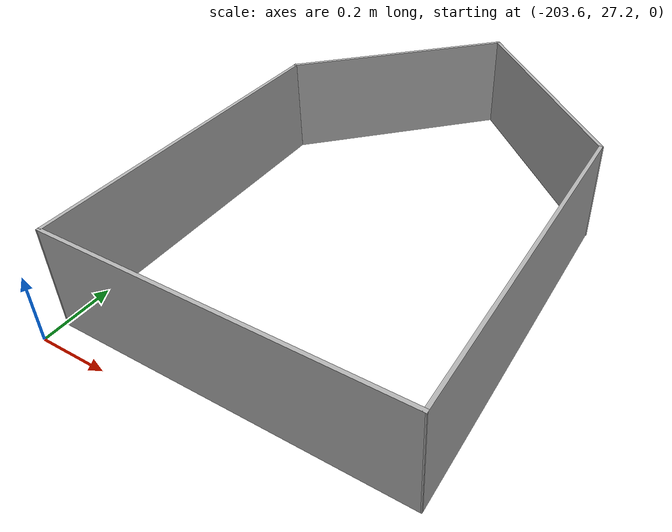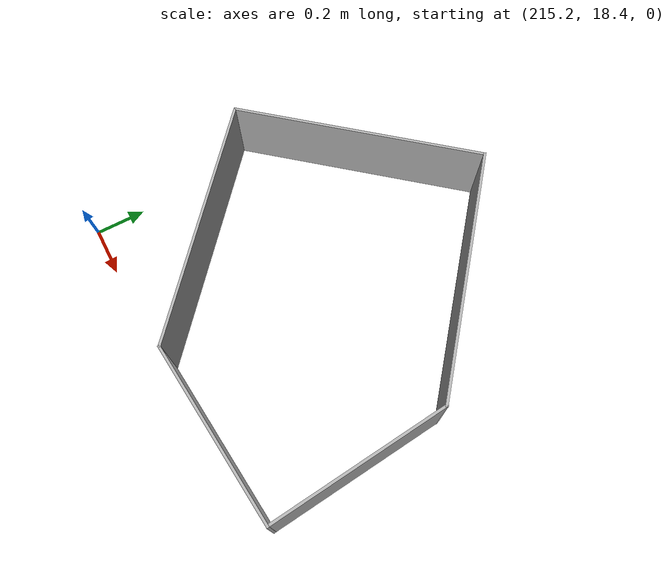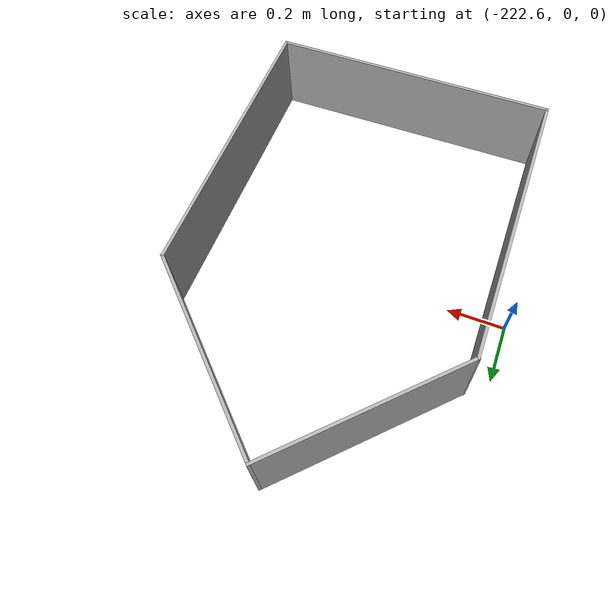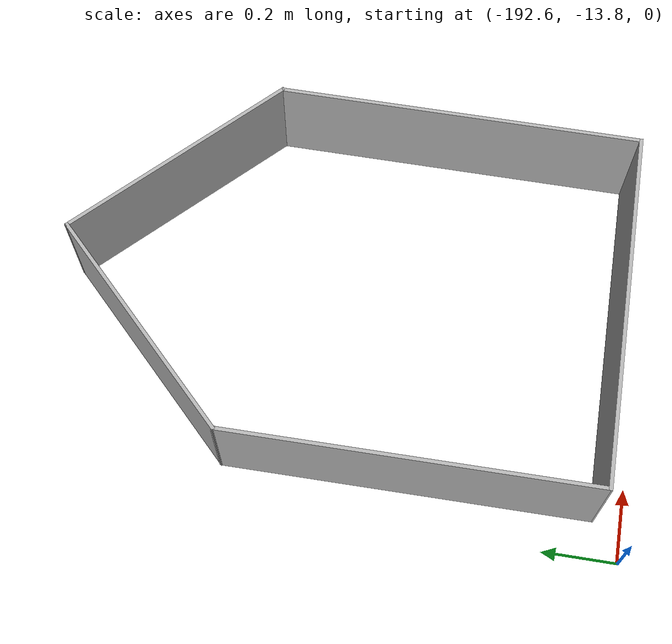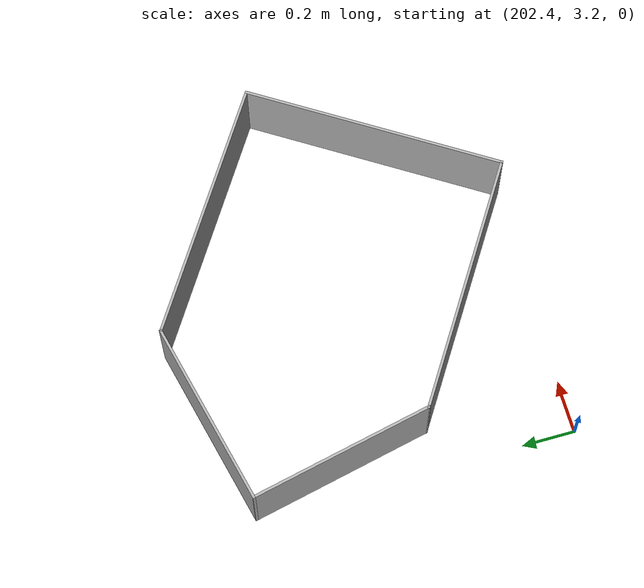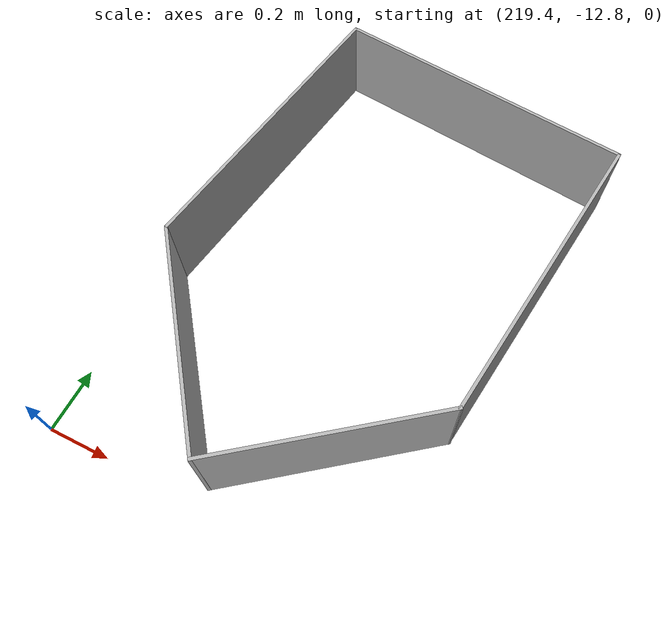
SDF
<sdf version="1.9">
 <world name="cadc_custom">
  <physics type="ode">
   <max_step_size>0.004</max_step_size>
   <real_time_factor>1.0</real_time_factor>
   <real_time_update_rate>250</real_time_update_rate>
  </physics>
  <plugin name="gz::sim::systems::Physics" filename="gz-sim-physics-system"/>
  <plugin name="gz::sim::systems::UserCommands" filename="gz-sim-user-commands-system"/>
  <plugin name="gz::sim::systems::SceneBroadcaster" filename="gz-sim-scene-broadcaster-system"/>
  <plugin name="gz::sim::systems::Contact" filename="gz-sim-contact-system"/>
  <plugin name="gz::sim::systems::Imu" filename="gz-sim-imu-system"/>
  <plugin name="gz::sim::systems::AirPressure" filename="gz-sim-air-pressure-system"/>
  <plugin name="gz::sim::systems::ApplyLinkWrench" filename="gz-sim-apply-link-wrench-system"/>
  <plugin name="gz::sim::systems::NavSat" filename="gz-sim-navsat-system"/>
  <plugin name="gz::sim::systems::Sensors" filename="gz-sim-sensors-system">
   <render_engine>ogre2</render_engine>
  </plugin>
  <gravity>0 0 -9.8</gravity>
  <magnetic_field>6e-06 2.3e-05 -4.2e-05</magnetic_field>
  <atmosphere type="adiabatic"/>
  <scene>
   <grid>false</grid>
   <ambient>0.4 0.4 0.4 1</ambient>
   <background>0.7 0.7 0.7 1</background>
   <shadows>true</shadows>
  </scene>
  <model name="线">
   <pose>-137.655 -22.3114 0 0 -0 0</pose>
   <link name="Wall_0">
    <collision name="Wall_0_Collision">
     <geometry><box><size>20 0.05 0.01</size></box></geometry>
     <pose>0 0 0.005 0 -0 0</pose>
    </collision>
    <visual name="Wall_0_Visual">
     <pose>0 0 0.005 0 -0 0</pose>
     <geometry><box><size>20 0.05 0.01</size></box></geometry>
     <material>
      <ambient>1 1 1 1</ambient>
      <ambient>0.3 0.3 0.3 1</ambient>
      <diffuse>0.7 0.7 0.7 1</diffuse>
      <specular>0.01 0.01 0.01 1</specular>
     </material>
     <meta><layer>0</layer></meta>
    </visual>
    <pose>-1.0275 0 0 0 -0 1.5708</pose>
   </link>
   <static>1</static>
  </model>
  <model name="天井">
   <pose>-220.98 0.74 0 0 -0 0</pose>
   <link name="Wall_0">
    <collision name="Wall_0_Collision">
     <geometry><box><size>1 0.01 0.3</size></box></geometry>
     <pose>0 0 0.15 0 -0 0</pose>
    </collision>
    <visual name="Wall_0_Visual">
     <pose>0 0 0.15 0 -0 0</pose>
     <geometry><box><size>1 0.01 0.3</size></box></geometry>
     <material>
      <ambient>1 1 1 1</ambient>
      <ambient>0.3 0.3 0.3 1</ambient>
      <diffuse>0.7 0.7 0.7 1</diffuse>
      <specular>0.01 0.01 0.01 1</specular>
     </material>
     <meta><layer>0</layer></meta>
    </visual>
    <pose>-1.54465 -0.967489 0 0 -0 -1.56712</pose>
   </link>
   <link name="Wall_11">
    <collision name="Wall_11_Collision">
     <geometry><box><size>1 0.01 0.3</size></box></geometry>
     <pose>0 0 0.15 0 -0 0</pose>
    </collision>
    <visual name="Wall_11_Visual">
     <pose>0 0 0.15 0 -0 0</pose>
     <geometry><box><size>1 0.01 0.3</size></box></geometry>
     <material>
      <ambient>1 1 1 1</ambient>
      <ambient>0.3 0.3 0.3 1</ambient>
      <diffuse>0.7 0.7 0.7 1</diffuse>
      <specular>0.01 0.01 0.01 1</specular>
     </material>
     <meta><layer>0</layer></meta>
    </visual>
    <pose>-1.04783 -1.46249 0 0 -0 -7e-06</pose>
   </link>
   <link name="Wall_2">
    <collision name="Wall_2_Collision">
     <geometry><box><size>1 0.01 0.3</size></box></geometry>
     <pose>0 0 0.15 0 -0 0</pose>
    </collision>
    <visual name="Wall_2_Visual">
     <pose>0 0 0.15 0 -0 0</pose>
     <geometry><box><size>1 0.01 0.3</size></box></geometry>
     <material>
      <ambient>1 1 1 1</ambient>
      <ambient>0.3 0.3 0.3 1</ambient>
      <diffuse>0.7 0.7 0.7 1</diffuse>
      <specular>0.01 0.01 0.01 1</specular>
     </material>
     <meta><layer>0</layer></meta>
    </visual>
    <pose>-0.550887 -0.967492 0 0 -0 1.56687</pose>
   </link>
   <link name="Wall_7">
    <collision name="Wall_7_Collision">
     <geometry><box><size>0.707 0.01 0.3</size></box></geometry>
     <pose>0 0 0.15 0 -0 0</pose>
    </collision>
    <visual name="Wall_7_Visual">
     <pose>0 0 0.15 0 -0 0</pose>
     <geometry><box><size>0.707 0.01 0.3</size></box></geometry>
     <material>
      <ambient>1 1 1 1</ambient>
      <ambient>0.3 0.3 0.3 1</ambient>
      <diffuse>0.7 0.7 0.7 1</diffuse>
      <specular>0.01 0.01 0.01 1</specular>
     </material>
     <meta><layer>0</layer></meta>
    </visual>
    <pose>-1.30004 -0.226065 0 0 -0 0.785398</pose>
   </link>
   <link name="Wall_8">
    <collision name="Wall_8_Collision">
     <geometry><box><size>0.713422 0.01 0.3</size></box></geometry>
     <pose>0 0 0.15 0 -0 0</pose>
    </collision>
    <visual name="Wall_8_Visual">
     <pose>0 0 0.15 0 -0 0</pose>
     <geometry><box><size>0.713422 0.01 0.3</size></box></geometry>
     <material>
      <ambient>1 1 1 1</ambient>
      <ambient>0.3 0.3 0.3 1</ambient>
      <diffuse>0.7 0.7 0.7 1</diffuse>
      <specular>0.01 0.01 0.01 1</specular>
     </material>
     <meta><layer>0</layer></meta>
    </visual>
    <pose>-0.801278 -0.224186 0 0 -0 -0.76973</pose>
   </link>
   <static>1</static>
  </model>
  <model name="天井_0">
   <pose>-202.045 28.73 0 0 -0 0</pose>
   <link name="Wall_0">
    <collision name="Wall_0_Collision">
     <geometry><box><size>1 0.01 0.3</size></box></geometry>
     <pose>0 0 0.15 0 -0 0</pose>
    </collision>
    <visual name="Wall_0_Visual">
     <pose>0 0 0.15 0 -0 0</pose>
     <geometry><box><size>1 0.01 0.3</size></box></geometry>
     <material>
      <ambient>1 1 1 1</ambient>
      <ambient>0.3 0.3 0.3 1</ambient>
      <diffuse>0.7 0.7 0.7 1</diffuse>
      <specular>0.01 0.01 0.01 1</specular>
     </material>
     <meta><layer>0</layer></meta>
    </visual>
    <pose>-1.54465 -0.967489 0 0 -0 -1.56712</pose>
   </link>
   <link name="Wall_11">
    <collision name="Wall_11_Collision">
     <geometry><box><size>1 0.01 0.3</size></box></geometry>
     <pose>0 0 0.15 0 -0 0</pose>
    </collision>
    <visual name="Wall_11_Visual">
     <pose>0 0 0.15 0 -0 0</pose>
     <geometry><box><size>1 0.01 0.3</size></box></geometry>
     <material>
      <ambient>1 1 1 1</ambient>
      <ambient>0.3 0.3 0.3 1</ambient>
      <diffuse>0.7 0.7 0.7 1</diffuse>
      <specular>0.01 0.01 0.01 1</specular>
     </material>
     <meta><layer>0</layer></meta>
    </visual>
    <pose>-1.04783 -1.46249 0 0 -0 -7e-06</pose>
   </link>
   <link name="Wall_2">
    <collision name="Wall_2_Collision">
     <geometry><box><size>1 0.01 0.3</size></box></geometry>
     <pose>0 0 0.15 0 -0 0</pose>
    </collision>
    <visual name="Wall_2_Visual">
     <pose>0 0 0.15 0 -0 0</pose>
     <geometry><box><size>1 0.01 0.3</size></box></geometry>
     <material>
      <ambient>1 1 1 1</ambient>
      <ambient>0.3 0.3 0.3 1</ambient>
      <diffuse>0.7 0.7 0.7 1</diffuse>
      <specular>0.01 0.01 0.01 1</specular>
     </material>
     <meta><layer>0</layer></meta>
    </visual>
    <pose>-0.550887 -0.967492 0 0 -0 1.56687</pose>
   </link>
   <link name="Wall_7">
    <collision name="Wall_7_Collision">
     <geometry><box><size>0.707 0.01 0.3</size></box></geometry>
     <pose>0 0 0.15 0 -0 0</pose>
    </collision>
    <visual name="Wall_7_Visual">
     <pose>0 0 0.15 0 -0 0</pose>
     <geometry><box><size>0.707 0.01 0.3</size></box></geometry>
     <material>
      <ambient>1 1 1 1</ambient>
      <ambient>0.3 0.3 0.3 1</ambient>
      <diffuse>0.7 0.7 0.7 1</diffuse>
      <specular>0.01 0.01 0.01 1</specular>
     </material>
     <meta><layer>0</layer></meta>
    </visual>
    <pose>-1.30004 -0.226065 0 0 -0 0.785398</pose>
   </link>
   <link name="Wall_8">
    <collision name="Wall_8_Collision">
     <geometry><box><size>0.713422 0.01 0.3</size></box></geometry>
     <pose>0 0 0.15 0 -0 0</pose>
    </collision>
    <visual name="Wall_8_Visual">
     <pose>0 0 0.15 0 -0 0</pose>
     <geometry><box><size>0.713422 0.01 0.3</size></box></geometry>
     <material>
      <ambient>1 1 1 1</ambient>
      <ambient>0.3 0.3 0.3 1</ambient>
      <diffuse>0.7 0.7 0.7 1</diffuse>
      <specular>0.01 0.01 0.01 1</specular>
     </material>
     <meta><layer>0</layer></meta>
    </visual>
    <pose>-0.801278 -0.224186 0 0 -0 -0.76973</pose>
   </link>
   <static>1</static>
  </model>
  <model name="天井_1">
   <pose>-190.95 -12.26 0 0 -0 0</pose>
   <link name="Wall_0">
    <collision name="Wall_0_Collision">
     <geometry><box><size>1 0.01 0.3</size></box></geometry>
     <pose>0 0 0.15 0 -0 0</pose>
    </collision>
    <visual name="Wall_0_Visual">
     <pose>0 0 0.15 0 -0 0</pose>
     <geometry><box><size>1 0.01 0.3</size></box></geometry>
     <material>
      <ambient>1 1 1 1</ambient>
      <ambient>0.3 0.3 0.3 1</ambient>
      <diffuse>0.7 0.7 0.7 1</diffuse>
      <specular>0.01 0.01 0.01 1</specular>
     </material>
     <meta><layer>0</layer></meta>
    </visual>
    <pose>-1.54465 -0.967489 0 0 -0 -1.56712</pose>
   </link>
   <link name="Wall_11">
    <collision name="Wall_11_Collision">
     <geometry><box><size>1 0.01 0.3</size></box></geometry>
     <pose>0 0 0.15 0 -0 0</pose>
    </collision>
    <visual name="Wall_11_Visual">
     <pose>0 0 0.15 0 -0 0</pose>
     <geometry><box><size>1 0.01 0.3</size></box></geometry>
     <material>
      <ambient>1 1 1 1</ambient>
      <ambient>0.3 0.3 0.3 1</ambient>
      <diffuse>0.7 0.7 0.7 1</diffuse>
      <specular>0.01 0.01 0.01 1</specular>
     </material>
     <meta><layer>0</layer></meta>
    </visual>
    <pose>-1.04783 -1.46249 0 0 -0 -7e-06</pose>
   </link>
   <link name="Wall_2">
    <collision name="Wall_2_Collision">
     <geometry><box><size>1 0.01 0.3</size></box></geometry>
     <pose>0 0 0.15 0 -0 0</pose>
    </collision>
    <visual name="Wall_2_Visual">
     <pose>0 0 0.15 0 -0 0</pose>
     <geometry><box><size>1 0.01 0.3</size></box></geometry>
     <material>
      <ambient>1 1 1 1</ambient>
      <ambient>0.3 0.3 0.3 1</ambient>
      <diffuse>0.7 0.7 0.7 1</diffuse>
      <specular>0.01 0.01 0.01 1</specular>
     </material>
     <meta><layer>0</layer></meta>
    </visual>
    <pose>-0.550887 -0.967492 0 0 -0 1.56687</pose>
   </link>
   <link name="Wall_7">
    <collision name="Wall_7_Collision">
     <geometry><box><size>0.707 0.01 0.3</size></box></geometry>
     <pose>0 0 0.15 0 -0 0</pose>
    </collision>
    <visual name="Wall_7_Visual">
     <pose>0 0 0.15 0 -0 0</pose>
     <geometry><box><size>0.707 0.01 0.3</size></box></geometry>
     <material>
      <ambient>1 1 1 1</ambient>
      <ambient>0.3 0.3 0.3 1</ambient>
      <diffuse>0.7 0.7 0.7 1</diffuse>
      <specular>0.01 0.01 0.01 1</specular>
     </material>
     <meta><layer>0</layer></meta>
    </visual>
    <pose>-1.30004 -0.226065 0 0 -0 0.785398</pose>
   </link>
   <link name="Wall_8">
    <collision name="Wall_8_Collision">
     <geometry><box><size>0.713422 0.01 0.3</size></box></geometry>
     <pose>0 0 0.15 0 -0 0</pose>
    </collision>
    <visual name="Wall_8_Visual">
     <pose>0 0 0.15 0 -0 0</pose>
     <geometry><box><size>0.713422 0.01 0.3</size></box></geometry>
     <material>
      <ambient>1 1 1 1</ambient>
      <ambient>0.3 0.3 0.3 1</ambient>
      <diffuse>0.7 0.7 0.7 1</diffuse>
      <specular>0.01 0.01 0.01 1</specular>
     </material>
     <meta><layer>0</layer></meta>
    </visual>
    <pose>-0.801278 -0.224186 0 0 -0 -0.76973</pose>
   </link>
   <static>1</static>
  </model>
  <model name="线_0">
   <pose>125.314 -22.761 0 0 -0 0</pose>
   <link name="Wall_0">
    <collision name="Wall_0_Collision">
     <geometry><box><size>20 0.05 0.01</size></box></geometry>
     <pose>0 0 0.005 0 -0 0</pose>
    </collision>
    <visual name="Wall_0_Visual">
     <pose>0 0 0.005 0 -0 0</pose>
     <geometry><box><size>20 0.05 0.01</size></box></geometry>
     <material>
      <ambient>1 1 1 1</ambient>
      <ambient>0.3 0.3 0.3 1</ambient>
      <diffuse>0.7 0.7 0.7 1</diffuse>
      <specular>0.01 0.01 0.01 1</specular>
     </material>
     <meta><layer>0</layer></meta>
    </visual>
    <pose>-1.0275 0 0 0 -0 1.5708</pose>
   </link>
   <static>1</static>
  </model>
  <model name="天井_2_clone">
   <pose>202.987 5.2799 0 0 -0 1</pose>
   <link name="Wall_0">
    <collision name="Wall_0_Collision">
     <geometry><box><size>1 0.01 0.3</size></box></geometry>
     <pose>0 0 0.15 0 -0 0</pose>
    </collision>
    <visual name="Wall_0_Visual">
     <pose>0 0 0.15 0 -0 0</pose>
     <geometry><box><size>1 0.01 0.3</size></box></geometry>
     <material>
      <ambient>1 1 1 1</ambient>
      <ambient>0.3 0.3 0.3 1</ambient>
      <diffuse>0.7 0.7 0.7 1</diffuse>
      <specular>0.01 0.01 0.01 1</specular>
     </material>
     <meta><layer>0</layer></meta>
    </visual>
    <pose>-1.54465 -0.967489 0 0 -0 -1.56712</pose>
   </link>
   <link name="Wall_11">
    <collision name="Wall_11_Collision">
     <geometry><box><size>1 0.01 0.3</size></box></geometry>
     <pose>0 0 0.15 0 -0 0</pose>
    </collision>
    <visual name="Wall_11_Visual">
     <pose>0 0 0.15 0 -0 0</pose>
     <geometry><box><size>1 0.01 0.3</size></box></geometry>
     <material>
      <ambient>1 1 1 1</ambient>
      <ambient>0.3 0.3 0.3 1</ambient>
      <diffuse>0.7 0.7 0.7 1</diffuse>
      <specular>0.01 0.01 0.01 1</specular>
     </material>
     <meta><layer>0</layer></meta>
    </visual>
    <pose>-1.04783 -1.46249 0 0 -0 -7e-06</pose>
   </link>
   <link name="Wall_2">
    <collision name="Wall_2_Collision">
     <geometry><box><size>1 0.01 0.3</size></box></geometry>
     <pose>0 0 0.15 0 -0 0</pose>
    </collision>
    <visual name="Wall_2_Visual">
     <pose>0 0 0.15 0 -0 0</pose>
     <geometry><box><size>1 0.01 0.3</size></box></geometry>
     <material>
      <ambient>1 1 1 1</ambient>
      <ambient>0.3 0.3 0.3 1</ambient>
      <diffuse>0.7 0.7 0.7 1</diffuse>
      <specular>0.01 0.01 0.01 1</specular>
     </material>
     <meta><layer>0</layer></meta>
    </visual>
    <pose>-0.550887 -0.967492 0 0 -0 1.56687</pose>
   </link>
   <link name="Wall_7">
    <collision name="Wall_7_Collision">
     <geometry><box><size>0.707 0.01 0.3</size></box></geometry>
     <pose>0 0 0.15 0 -0 0</pose>
    </collision>
    <visual name="Wall_7_Visual">
     <pose>0 0 0.15 0 -0 0</pose>
     <geometry><box><size>0.707 0.01 0.3</size></box></geometry>
     <material>
      <ambient>1 1 1 1</ambient>
      <ambient>0.3 0.3 0.3 1</ambient>
      <diffuse>0.7 0.7 0.7 1</diffuse>
      <specular>0.01 0.01 0.01 1</specular>
     </material>
     <meta><layer>0</layer></meta>
    </visual>
    <pose>-1.30004 -0.226065 0 0 -0 0.785398</pose>
   </link>
   <link name="Wall_8">
    <collision name="Wall_8_Collision">
     <geometry><box><size>0.713422 0.01 0.3</size></box></geometry>
     <pose>0 0 0.15 0 -0 0</pose>
    </collision>
    <visual name="Wall_8_Visual">
     <pose>0 0 0.15 0 -0 0</pose>
     <geometry><box><size>0.713422 0.01 0.3</size></box></geometry>
     <material>
      <ambient>1 1 1 1</ambient>
      <ambient>0.3 0.3 0.3 1</ambient>
      <diffuse>0.7 0.7 0.7 1</diffuse>
      <specular>0.01 0.01 0.01 1</specular>
     </material>
     <meta><layer>0</layer></meta>
    </visual>
    <pose>-0.801278 -0.224186 0 0 -0 -0.76973</pose>
   </link>
   <static>1</static>
  </model>
  <model name="天井_3_clone">
   <pose>218.868 -12.57488 0 0 -0 3</pose>
   <link name="Wall_0">
    <collision name="Wall_0_Collision">
     <geometry><box><size>1 0.01 0.3</size></box></geometry>
     <pose>0 0 0.15 0 -0 0</pose>
    </collision>
    <visual name="Wall_0_Visual">
     <pose>0 0 0.15 0 -0 0</pose>
     <geometry><box><size>1 0.01 0.3</size></box></geometry>
     <material>
      <ambient>1 1 1 1</ambient>
      <ambient>0.3 0.3 0.3 1</ambient>
      <diffuse>0.7 0.7 0.7 1</diffuse>
      <specular>0.01 0.01 0.01 1</specular>
     </material>
     <meta><layer>0</layer></meta>
    </visual>
    <pose>-1.54465 -0.967489 0 0 -0 -1.56712</pose>
   </link>
   <link name="Wall_11">
    <collision name="Wall_11_Collision">
     <geometry><box><size>1 0.01 0.3</size></box></geometry>
     <pose>0 0 0.15 0 -0 0</pose>
    </collision>
    <visual name="Wall_11_Visual">
     <pose>0 0 0.15 0 -0 0</pose>
     <geometry><box><size>1 0.01 0.3</size></box></geometry>
     <material>
      <ambient>1 1 1 1</ambient>
      <ambient>0.3 0.3 0.3 1</ambient>
      <diffuse>0.7 0.7 0.7 1</diffuse>
      <specular>0.01 0.01 0.01 1</specular>
     </material>
     <meta><layer>0</layer></meta>
    </visual>
    <pose>-1.04783 -1.46249 0 0 -0 -7e-06</pose>
   </link>
   <link name="Wall_2">
    <collision name="Wall_2_Collision">
     <geometry><box><size>1 0.01 0.3</size></box></geometry>
     <pose>0 0 0.15 0 -0 0</pose>
    </collision>
    <visual name="Wall_2_Visual">
     <pose>0 0 0.15 0 -0 0</pose>
     <geometry><box><size>1 0.01 0.3</size></box></geometry>
     <material>
      <ambient>1 1 1 1</ambient>
      <ambient>0.3 0.3 0.3 1</ambient>
      <diffuse>0.7 0.7 0.7 1</diffuse>
      <specular>0.01 0.01 0.01 1</specular>
     </material>
     <meta><layer>0</layer></meta>
    </visual>
    <pose>-0.550887 -0.967492 0 0 -0 1.56687</pose>
   </link>
   <link name="Wall_7">
    <collision name="Wall_7_Collision">
     <geometry><box><size>0.707 0.01 0.3</size></box></geometry>
     <pose>0 0 0.15 0 -0 0</pose>
    </collision>
    <visual name="Wall_7_Visual">
     <pose>0 0 0.15 0 -0 0</pose>
     <geometry><box><size>0.707 0.01 0.3</size></box></geometry>
     <material>
      <ambient>1 1 1 1</ambient>
      <ambient>0.3 0.3 0.3 1</ambient>
      <diffuse>0.7 0.7 0.7 1</diffuse>
      <specular>0.01 0.01 0.01 1</specular>
     </material>
     <meta><layer>0</layer></meta>
    </visual>
    <pose>-1.30004 -0.226065 0 0 -0 0.785398</pose>
   </link>
   <link name="Wall_8">
    <collision name="Wall_8_Collision">
     <geometry><box><size>0.713422 0.01 0.3</size></box></geometry>
     <pose>0 0 0.15 0 -0 0</pose>
    </collision>
    <visual name="Wall_8_Visual">
     <pose>0 0 0.15 0 -0 0</pose>
     <geometry><box><size>0.713422 0.01 0.3</size></box></geometry>
     <material>
      <ambient>1 1 1 1</ambient>
      <ambient>0.3 0.3 0.3 1</ambient>
      <diffuse>0.7 0.7 0.7 1</diffuse>
      <specular>0.01 0.01 0.01 1</specular>
     </material>
     <meta><layer>0</layer></meta>
    </visual>
    <pose>-0.801278 -0.224186 0 0 -0 -0.76973</pose>
   </link>
   <static>1</static>
  </model>
  <model name="天井_4_clone">
   <pose>215.875 17.7238 0 0 0 -2.28319</pose>
   <link name="Wall_0">
    <collision name="Wall_0_Collision">
     <geometry><box><size>1 0.01 0.3</size></box></geometry>
     <pose>0 0 0.15 0 -0 0</pose>
    </collision>
    <visual name="Wall_0_Visual">
     <pose>0 0 0.15 0 -0 0</pose>
     <geometry><box><size>1 0.01 0.3</size></box></geometry>
     <material>
      <ambient>1 1 1 1</ambient>
      <ambient>0.3 0.3 0.3 1</ambient>
      <diffuse>0.7 0.7 0.7 1</diffuse>
      <specular>0.01 0.01 0.01 1</specular>
     </material>
     <meta><layer>0</layer></meta>
    </visual>
    <pose>-1.54465 -0.967489 0 0 -0 -1.56712</pose>
   </link>
   <link name="Wall_11">
    <collision name="Wall_11_Collision">
     <geometry><box><size>1 0.01 0.3</size></box></geometry>
     <pose>0 0 0.15 0 -0 0</pose>
    </collision>
    <visual name="Wall_11_Visual">
     <pose>0 0 0.15 0 -0 0</pose>
     <geometry><box><size>1 0.01 0.3</size></box></geometry>
     <material>
      <ambient>1 1 1 1</ambient>
      <ambient>0.3 0.3 0.3 1</ambient>
      <diffuse>0.7 0.7 0.7 1</diffuse>
      <specular>0.01 0.01 0.01 1</specular>
     </material>
     <meta><layer>0</layer></meta>
    </visual>
    <pose>-1.04783 -1.46249 0 0 -0 -7e-06</pose>
   </link>
   <link name="Wall_2">
    <collision name="Wall_2_Collision">
     <geometry><box><size>1 0.01 0.3</size></box></geometry>
     <pose>0 0 0.15 0 -0 0</pose>
    </collision>
    <visual name="Wall_2_Visual">
     <pose>0 0 0.15 0 -0 0</pose>
     <geometry><box><size>1 0.01 0.3</size></box></geometry>
     <material>
      <ambient>1 1 1 1</ambient>
      <ambient>0.3 0.3 0.3 1</ambient>
      <diffuse>0.7 0.7 0.7 1</diffuse>
      <specular>0.01 0.01 0.01 1</specular>
     </material>
     <meta><layer>0</layer></meta>
    </visual>
    <pose>-0.550887 -0.967492 0 0 -0 1.56687</pose>
   </link>
   <link name="Wall_7">
    <collision name="Wall_7_Collision">
     <geometry><box><size>0.707 0.01 0.3</size></box></geometry>
     <pose>0 0 0.15 0 -0 0</pose>
    </collision>
    <visual name="Wall_7_Visual">
     <pose>0 0 0.15 0 -0 0</pose>
     <geometry><box><size>0.707 0.01 0.3</size></box></geometry>
     <material>
      <ambient>1 1 1 1</ambient>
      <ambient>0.3 0.3 0.3 1</ambient>
      <diffuse>0.7 0.7 0.7 1</diffuse>
      <specular>0.01 0.01 0.01 1</specular>
     </material>
     <meta><layer>0</layer></meta>
    </visual>
    <pose>-1.30004 -0.226065 0 0 -0 0.785398</pose>
   </link>
   <link name="Wall_8">
    <collision name="Wall_8_Collision">
     <geometry><box><size>0.713422 0.01 0.3</size></box></geometry>
     <pose>0 0 0.15 0 -0 0</pose>
    </collision>
    <visual name="Wall_8_Visual">
     <pose>0 0 0.15 0 -0 0</pose>
     <geometry><box><size>0.713422 0.01 0.3</size></box></geometry>
     <material>
      <ambient>1 1 1 1</ambient>
      <ambient>0.3 0.3 0.3 1</ambient>
      <diffuse>0.7 0.7 0.7 1</diffuse>
      <specular>0.01 0.01 0.01 1</specular>
     </material>
     <meta><layer>0</layer></meta>
    </visual>
    <pose>-0.801278 -0.224186 0 0 -0 -0.76973</pose>
   </link>
   <static>1</static>
  </model>
  <light name="sunUTC" type="directional">
   <pose>0 0 500 0 -0 0</pose>
   <intensity>1</intensity>
   <direction>0.001 0.625 -0.78</direction>
   <diffuse>0.904 0.904 0.904 1</diffuse>
   <specular>0.271 0.271 0.271 1</specular>
   <attenuation><range>2000</range><linear>0</linear><constant>1</constant><quadratic>0</quadratic></attenuation>
   <spot><inner_angle>0</inner_angle><outer_angle>0</outer_angle><falloff>0</falloff></spot>
  </light>
  <spherical_coordinates>
   <surface_model>EARTH_WGS84</surface_model>
   <world_frame_orientation>ENU</world_frame_orientation>
   <latitude_deg>0</latitude_deg>
   <longitude_deg>0</longitude_deg>
   <elevation>0</elevation>
  </spherical_coordinates>
 </world>
</sdf>
